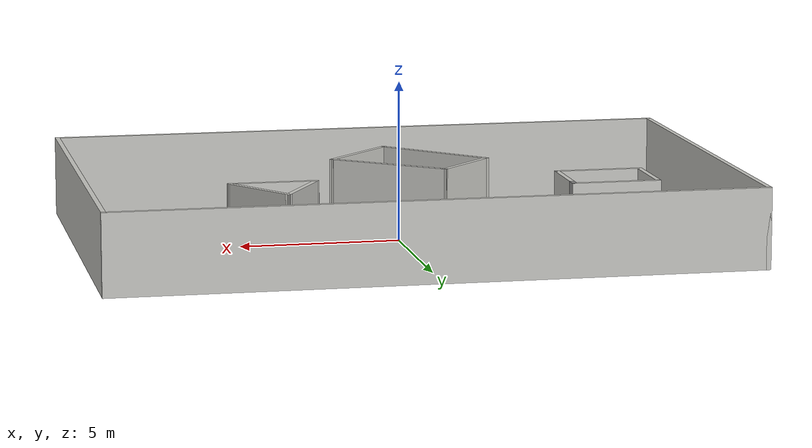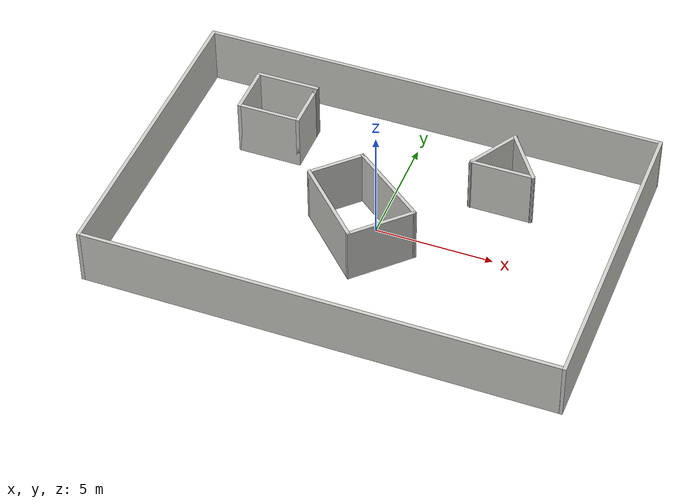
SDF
<?xml version='1.0'?>
<sdf version='1.7'>
  <model name='Untitled'>
    <pose>0.013374 -0.052249 0 0 -0 0</pose>
    <link name='Wall_11'>
      <collision name='Wall_11_Collision'>
        <geometry>
          <box>
            <size>2.25 0.15 2.5</size>
          </box>
        </geometry>
        <pose>0 0 1.25 0 -0 0</pose>
      </collision>
      <visual name='Wall_11_Visual'>
        <pose>0 0 1.25 0 -0 0</pose>
        <geometry>
          <box>
            <size>2.25 0.15 2.5</size>
          </box>
        </geometry>
        <material>
          <script>
            <uri>file://media/materials/scripts/gazebo.material</uri>
            <name>Gazebo/CeilingTiled</name>
          </script>
          <ambient>1 1 1 1</ambient>
        </material>
        <meta>
          <layer>0</layer>
        </meta>
      </visual>
      <pose>-7.02436 3.67951 0 0 -0 -1.5708</pose>
    </link>
    <link name='Wall_12'>
      <collision name='Wall_12_Collision'>
        <geometry>
          <box>
            <size>2.75 0.15 2.5</size>
          </box>
        </geometry>
        <pose>0 0 1.25 0 -0 0</pose>
      </collision>
      <visual name='Wall_12_Visual'>
        <pose>0 0 1.25 0 -0 0</pose>
        <geometry>
          <box>
            <size>2.75 0.15 2.5</size>
          </box>
        </geometry>
        <material>
          <script>
            <uri>file://media/materials/scripts/gazebo.material</uri>
            <name>Gazebo/CeilingTiled</name>
          </script>
          <ambient>1 1 1 1</ambient>
        </material>
        <meta>
          <layer>0</layer>
        </meta>
      </visual>
      <pose>-5.72436 2.62951 0 0 -0 0</pose>
    </link>
    <link name='Wall_15'>
      <collision name='Wall_15_Collision'>
        <geometry>
          <box>
            <size>2 0.15 2.5</size>
          </box>
        </geometry>
        <pose>0 0 1.25 0 -0 0</pose>
      </collision>
      <visual name='Wall_15_Visual'>
        <pose>0 0 1.25 0 -0 0</pose>
        <geometry>
          <box>
            <size>2 0.15 2.5</size>
          </box>
        </geometry>
        <material>
          <script>
            <uri>file://media/materials/scripts/gazebo.material</uri>
            <name>Gazebo/CeilingTiled</name>
          </script>
          <ambient>1 1 1 1</ambient>
        </material>
        <meta>
          <layer>0</layer>
        </meta>
      </visual>
      <pose>-4.42436 3.55451 0 0 -0 1.5708</pose>
    </link>
    <link name='Wall_17'>
      <collision name='Wall_17_Collision'>
        <geometry>
          <box>
            <size>2.75 0.15 2.5</size>
          </box>
        </geometry>
        <pose>0 0 1.25 0 -0 0</pose>
      </collision>
      <visual name='Wall_17_Visual'>
        <pose>0 0 1.25 0 -0 0</pose>
        <geometry>
          <box>
            <size>2.75 0.15 2.5</size>
          </box>
        </geometry>
        <material>
          <script>
            <uri>file://media/materials/scripts/gazebo.material</uri>
            <name>Gazebo/CeilingTiled</name>
          </script>
          <ambient>1 1 1 1</ambient>
        </material>
        <meta>
          <layer>0</layer>
        </meta>
      </visual>
      <pose>-5.72436 4.72951 0 0 -0 0</pose>
    </link>
    <link name='Wall_18'>
      <collision name='Wall_18_Collision'>
        <geometry>
          <box>
            <size>0.4 0.15 2.5</size>
          </box>
        </geometry>
        <pose>0 0 1.25 0 -0 0</pose>
      </collision>
      <visual name='Wall_18_Visual'>
        <pose>0 0 1.25 0 -0 0</pose>
        <geometry>
          <box>
            <size>0.4 0.15 2.5</size>
          </box>
        </geometry>
        <material>
          <script>
            <uri>file://media/materials/scripts/gazebo.material</uri>
            <name>Gazebo/Grey</name>
          </script>
          <ambient>1 1 1 1</ambient>
        </material>
        <meta>
          <layer>0</layer>
        </meta>
      </visual>
      <pose>-4.42436 4.60451 0 0 -0 -1.5708</pose>
    </link>
    <link name='Wall_2'>
      <collision name='Wall_2_Collision'>
        <geometry>
          <box>
            <size>20 0.15 2.5</size>
          </box>
        </geometry>
        <pose>0 0 1.25 0 -0 0</pose>
      </collision>
      <visual name='Wall_2_Visual'>
        <pose>0 0 1.25 0 -0 0</pose>
        <geometry>
          <box>
            <size>20 0.15 2.5</size>
          </box>
        </geometry>
        <material>
          <script>
            <uri>file://media/materials/scripts/gazebo.material</uri>
            <name>Gazebo/CeilingTiled</name>
          </script>
          <ambient>1 1 1 1</ambient>
        </material>
        <meta>
          <layer>0</layer>
        </meta>
      </visual>
      <pose>-0 6.55 0 0 -0 0</pose>
    </link>
    <link name='Wall_20'>
      <collision name='Wall_20_Collision'>
        <geometry>
          <box>
            <size>2.5 0.15 2.5</size>
          </box>
        </geometry>
        <pose>0 0 1.25 0 -0 0</pose>
      </collision>
      <visual name='Wall_20_Visual'>
        <pose>0 0 1.25 0 -0 0</pose>
        <geometry>
          <box>
            <size>2.5 0.15 2.5</size>
          </box>
        </geometry>
        <material>
          <script>
            <uri>file://media/materials/scripts/gazebo.material</uri>
            <name>Gazebo/CeilingTiled</name>
          </script>
          <ambient>1 1 1 1</ambient>
        </material>
        <meta>
          <layer>0</layer>
        </meta>
      </visual>
      <pose>3.67596 3.7902 0 0 -0 -2.0944</pose>
    </link>
    <link name='Wall_21'>
      <collision name='Wall_21_Collision'>
        <geometry>
          <box>
            <size>2.75 0.15 2.5</size>
          </box>
        </geometry>
        <pose>0 0 1.25 0 -0 0</pose>
      </collision>
      <visual name='Wall_21_Visual'>
        <pose>0 0 1.25 0 -0 0</pose>
        <geometry>
          <box>
            <size>2.75 0.15 2.5</size>
          </box>
        </geometry>
        <material>
          <script>
            <uri>file://media/materials/scripts/gazebo.material</uri>
            <name>Gazebo/CeilingTiled</name>
          </script>
          <ambient>1 1 1 1</ambient>
        </material>
        <meta>
          <layer>0</layer>
        </meta>
      </visual>
      <pose>4.38846 2.77262 0 0 -0 0</pose>
    </link>
    <link name='Wall_22'>
      <collision name='Wall_22_Collision'>
        <geometry>
          <box>
            <size>2.63445 0.15 2.5</size>
          </box>
        </geometry>
        <pose>0 0 1.25 0 -0 0</pose>
      </collision>
      <visual name='Wall_22_Visual'>
        <pose>0 0 1.25 0 -0 0</pose>
        <geometry>
          <box>
            <size>2.63445 0.15 2.5</size>
          </box>
        </geometry>
        <material>
          <script>
            <uri>file://media/materials/scripts/gazebo.material</uri>
            <name>Gazebo/CeilingTiled</name>
          </script>
          <ambient>1 1 1 1</ambient>
        </material>
        <meta>
          <layer>0</layer>
        </meta>
      </visual>
      <pose>4.97596 3.7902 0 0 -0 2.18165</pose>
    </link>
    <link name='Wall_24'>
      <collision name='Wall_24_Collision'>
        <geometry>
          <box>
            <size>2.5 0.15 2.5</size>
          </box>
        </geometry>
        <pose>0 0 1.25 0 -0 0</pose>
      </collision>
      <visual name='Wall_24_Visual'>
        <pose>0 0 1.25 0 -0 0</pose>
        <geometry>
          <box>
            <size>2.5 0.15 2.5</size>
          </box>
        </geometry>
        <material>
          <script>
            <uri>file://media/materials/scripts/gazebo.material</uri>
            <name>Gazebo/CeilingTiled</name>
          </script>
          <ambient>1 1 1 1</ambient>
        </material>
        <meta>
          <layer>0</layer>
        </meta>
      </visual>
      <pose>-1.98492 0.740487 0 0 -0 -2.35619</pose>
    </link>
    <link name='Wall_25'>
      <collision name='Wall_25_Collision'>
        <geometry>
          <box>
            <size>4 0.15 2.5</size>
          </box>
        </geometry>
        <pose>0 0 1.25 0 -0 0</pose>
      </collision>
      <visual name='Wall_25_Visual'>
        <pose>0 0 1.25 0 -0 0</pose>
        <geometry>
          <box>
            <size>4 0.15 2.5</size>
          </box>
        </geometry>
        <material>
          <script>
            <uri>file://media/materials/scripts/gazebo.material</uri>
            <name>Gazebo/CeilingTiled</name>
          </script>
          <ambient>1 1 1 1</ambient>
        </material>
        <meta>
          <layer>0</layer>
        </meta>
      </visual>
      <pose>-1.45459 -1.45154 0 0 -0 -0.785398</pose>
    </link>
    <link name='Wall_26'>
      <collision name='Wall_26_Collision'>
        <geometry>
          <box>
            <size>3 0.15 2.5</size>
          </box>
        </geometry>
        <pose>0 0 1.25 0 -0 0</pose>
      </collision>
      <visual name='Wall_26_Visual'>
        <pose>0 0 1.25 0 -0 0</pose>
        <geometry>
          <box>
            <size>3 0.15 2.5</size>
          </box>
        </geometry>
        <material>
          <script>
            <uri>file://media/materials/scripts/gazebo.material</uri>
            <name>Gazebo/CeilingTiled</name>
          </script>
          <ambient>1 1 1 1</ambient>
        </material>
        <meta>
          <layer>0</layer>
        </meta>
      </visual>
      <pose>0.914216 -1.8051 0 0 -0 0.785398</pose>
    </link>
    <link name='Wall_27'>
      <collision name='Wall_27_Collision'>
        <geometry>
          <box>
            <size>4.03233 0.15 2.5</size>
          </box>
        </geometry>
        <pose>0 0 1.25 0 -0 0</pose>
      </collision>
      <visual name='Wall_27_Visual'>
        <pose>0 0 1.25 0 -0 0</pose>
        <geometry>
          <box>
            <size>4.03233 0.15 2.5</size>
          </box>
        </geometry>
        <material>
          <script>
            <uri>file://media/materials/scripts/gazebo.material</uri>
            <name>Gazebo/CeilingTiled</name>
          </script>
          <ambient>1 1 1 1</ambient>
        </material>
        <meta>
          <layer>0</layer>
        </meta>
      </visual>
      <pose>0.383886 0.386934 0 0 -0 2.48534</pose>
    </link>
    <link name='Wall_5'>
      <collision name='Wall_5_Collision'>
        <geometry>
          <box>
            <size>13.25 0.15 2.5</size>
          </box>
        </geometry>
        <pose>0 0 1.25 0 -0 0</pose>
      </collision>
      <visual name='Wall_5_Visual'>
        <pose>0 0 1.25 0 -0 0</pose>
        <geometry>
          <box>
            <size>13.25 0.15 2.5</size>
          </box>
        </geometry>
        <material>
          <script>
            <uri>file://media/materials/scripts/gazebo.material</uri>
            <name>Gazebo/CeilingTiled</name>
          </script>
          <ambient>1 1 1 1</ambient>
        </material>
        <meta>
          <layer>0</layer>
        </meta>
      </visual>
      <pose>-9.925 -0 0 0 -0 -1.5708</pose>
    </link>
    <link name='Wall_6'>
      <collision name='Wall_6_Collision'>
        <geometry>
          <box>
            <size>20 0.15 2.5</size>
          </box>
        </geometry>
        <pose>0 0 1.25 0 -0 0</pose>
      </collision>
      <visual name='Wall_6_Visual'>
        <pose>0 0 1.25 0 -0 0</pose>
        <geometry>
          <box>
            <size>20 0.15 2.5</size>
          </box>
        </geometry>
        <material>
          <script>
            <uri>file://media/materials/scripts/gazebo.material</uri>
            <name>Gazebo/CeilingTiled</name>
          </script>
          <ambient>1 1 1 1</ambient>
        </material>
        <meta>
          <layer>0</layer>
        </meta>
      </visual>
      <pose>-0 -6.55 0 0 -0 0</pose>
    </link>
    <link name='Wall_9'>
      <collision name='Wall_9_Collision'>
        <geometry>
          <box>
            <size>13.25 0.15 2.5</size>
          </box>
        </geometry>
        <pose>0 0 1.25 0 -0 0</pose>
      </collision>
      <visual name='Wall_9_Visual'>
        <pose>0 0 1.25 0 -0 0</pose>
        <geometry>
          <box>
            <size>13.25 0.15 2.5</size>
          </box>
        </geometry>
        <material>
          <script>
            <uri>file://media/materials/scripts/gazebo.material</uri>
            <name>Gazebo/CeilingTiled</name>
          </script>
          <ambient>1 1 1 1</ambient>
        </material>
        <meta>
          <layer>0</layer>
        </meta>
      </visual>
      <pose>9.925 -0 0 0 -0 1.5708</pose>
    </link>
    <static>1</static>
  </model>
</sdf>
